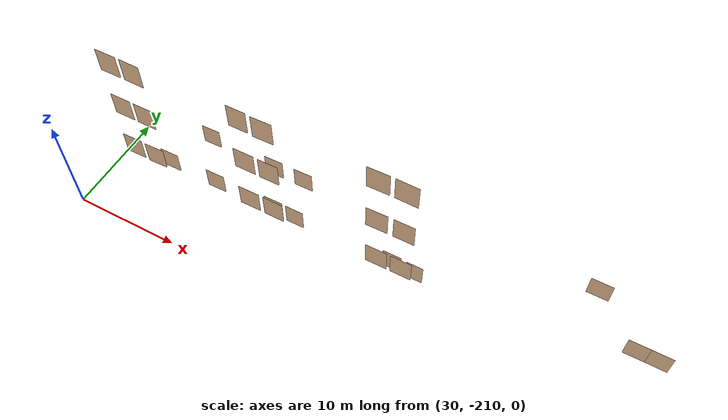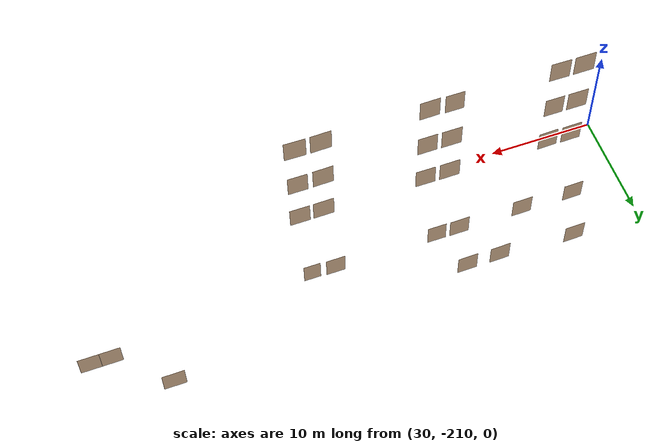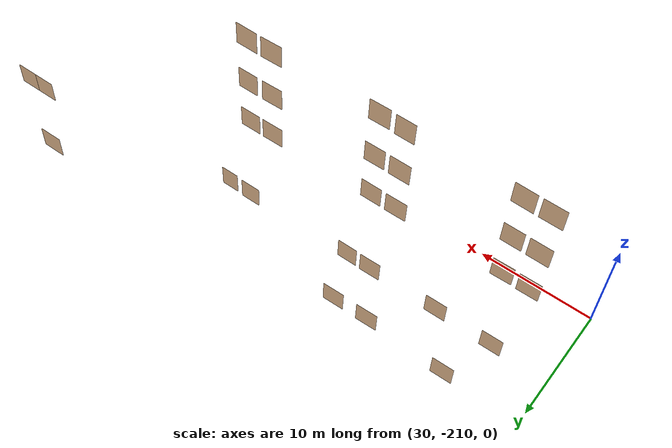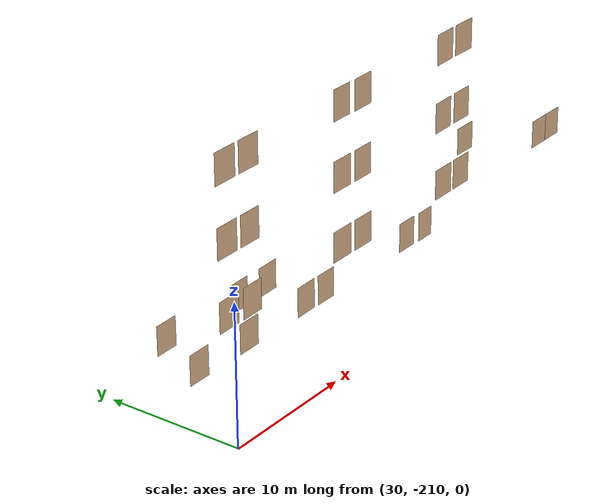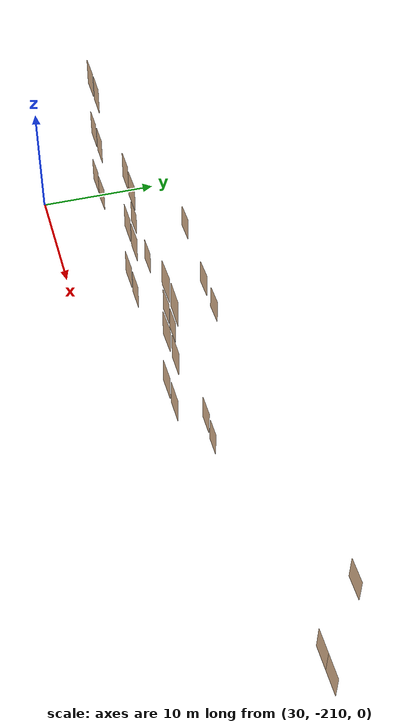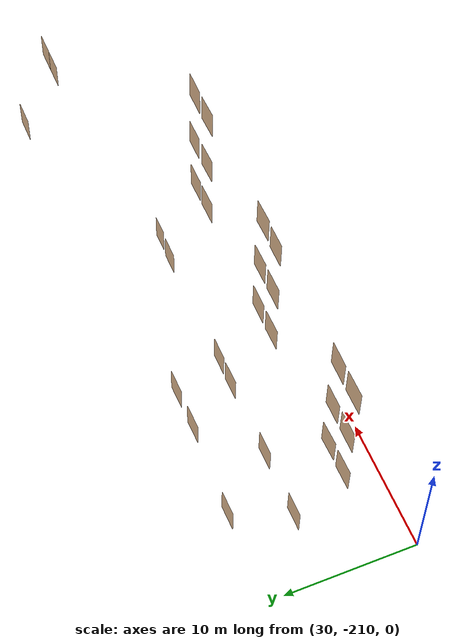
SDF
<sdf version="1.7">
 <world name="sim_world">
  <model name="puerta42">
   <pose>80.53459817433327 -200.9328262036871 0.0 0 0 0.0011002854422385291</pose>
   <link name="right">
    <pose>0.9516383064856365 0 1.11 0 0 0</pose>
    <visual name="right_visual">
     <geometry><box><size>1.893276612971273 0.03 2.2</size></box></geometry>
     <material>
      <ambient>0.5 0.25 0 0.6</ambient>
      <diffuse>0.5 0.25 0 0.6</diffuse>
      <pbr><metal><metalness>0.0</metalness></metal></pbr>
     </material>
    </visual>
    <collision name="right_collision">
     <geometry><box><size>1.893276612971273 0.03 2.2</size></box></geometry>
     <surface><contact><collide_bitmask>0x02</collide_bitmask></contact></surface>
    </collision>
    <inertial>
     <mass>50.0</mass>
     <inertia><ixx>20.17041666666667</ixx><iyy>35.1020680550999</iyy><izz>14.939151388433233</izz></inertia>
    </inertial>
   </link>
   <joint name="right_joint" type="revolute">
    <parent>world</parent>
    <child>right</child>
    <axis><xyz>0 0 -1</xyz><limit><lower>0</lower><upper>1.57</upper></limit></axis>
    <pose>0.9516383064856365 0 0 0 0 0</pose>
   </joint>
   <link name="left">
    <pose>-0.9516383064856365 0 1.11 0 0 0</pose>
    <visual name="left_visual">
     <geometry><box><size>1.893276612971273 0.03 2.2</size></box></geometry>
     <material>
      <ambient>0.5 0.25 0 0.6</ambient>
      <diffuse>0.5 0.25 0 0.6</diffuse>
      <pbr><metal><metalness>0.0</metalness></metal></pbr>
     </material>
    </visual>
    <collision name="left_collision">
     <geometry><box><size>1.893276612971273 0.03 2.2</size></box></geometry>
     <surface><contact><collide_bitmask>0x02</collide_bitmask></contact></surface>
    </collision>
    <inertial>
     <mass>50.0</mass>
     <inertia><ixx>20.17041666666667</ixx><iyy>35.1020680550999</iyy><izz>14.939151388433233</izz></inertia>
    </inertial>
   </link>
   <joint name="left_joint" type="revolute">
    <parent>world</parent>
    <child>left</child>
    <axis><xyz>0 0 -1</xyz><limit><lower>-1.57</lower><upper>0</upper></limit></axis>
    <pose>-0.9516383064856365 0 0 0 0 0</pose>
   </joint>
   <plugin name="register_component" filename="libregister_component.so">
    <component name="Door">
     <v_max_door>0.5</v_max_door>
     <a_max_door>0.3</a_max_door>
     <a_nom_door>0.15</a_nom_door>
     <dx_min_door>0.01</dx_min_door>
     <f_max_door>500.0</f_max_door>
     <ros_interface>true</ros_interface>
     <door name="puerta42" type="DoubleSwingDoor" left_joint_name="left_joint" right_joint_name="right_joint"/>
    </component>
   </plugin>
  </model>
  <model name="puerta80">
   <pose>43.98380168247718 -199.02396635045642 0.0 0 0 0.021663999724929484</pose>
   <link name="right">
    <pose>0 0 1.11 0 0 0</pose>
    <visual name="right_visual">
     <geometry><box><size>1.888745174678212 0.03 2.2</size></box></geometry>
     <material>
      <ambient>0.5 0.25 0 0.6</ambient>
      <diffuse>0.5 0.25 0 0.6</diffuse>
      <pbr><metal><metalness>0.0</metalness></metal></pbr>
     </material>
    </visual>
    <collision name="right_collision">
     <geometry><box><size>1.888745174678212 0.03 2.2</size></box></geometry>
     <surface><contact><collide_bitmask>0x02</collide_bitmask></contact></surface>
    </collision>
    <inertial>
     <mass>50.0</mass>
     <inertia><ixx>20.17041666666667</ixx><iyy>35.03065972862597</iyy><izz>14.867743061959292</izz></inertia>
    </inertial>
   </link>
   <joint name="right_joint" type="revolute">
    <parent>world</parent>
    <child>right</child>
    <axis><xyz>0 0 -1</xyz><limit><lower>0</lower><upper>1.57</upper></limit></axis>
    <pose>0.949372587339106 0 0 0 0 0</pose>
   </joint>
   <plugin name="register_component" filename="libregister_component.so">
    <component name="Door">
     <v_max_door>0.5</v_max_door>
     <a_max_door>0.3</a_max_door>
     <a_nom_door>0.15</a_nom_door>
     <dx_min_door>0.01</dx_min_door>
     <f_max_door>500.0</f_max_door>
     <ros_interface>true</ros_interface>
     <door name="puerta80" type="SwingDoor" left_joint_name="empty_joint" right_joint_name="right_joint"/>
    </component>
   </plugin>
  </model>
  <model name="puerta81">
   <pose>47.12745659566852 -199.02063719348487 0.0 0 0 -3.1238058205441708</pose>
   <link name="right">
    <pose>0 0 1.11 0 0 0</pose>
    <visual name="right_visual">
     <geometry><box><size>1.8678341784994377 0.03 2.2</size></box></geometry>
     <material>
      <ambient>0.5 0.25 0 0.6</ambient>
      <diffuse>0.5 0.25 0 0.6</diffuse>
      <pbr><metal><metalness>0.0</metalness></metal></pbr>
     </material>
    </visual>
    <collision name="right_collision">
     <geometry><box><size>1.8678341784994377 0.03 2.2</size></box></geometry>
     <surface><contact><collide_bitmask>0x02</collide_bitmask></contact></surface>
    </collision>
    <inertial>
     <mass>50.0</mass>
     <inertia><ixx>20.17041666666667</ixx><iyy>34.703352159877795</iyy><izz>14.540435493211122</izz></inertia>
    </inertial>
   </link>
   <joint name="right_joint" type="revolute">
    <parent>world</parent>
    <child>right</child>
    <axis><xyz>0 0 1</xyz><limit><lower>0</lower><upper>1.57</upper></limit></axis>
    <pose>0.9389170892497188 0 0 0 0 0</pose>
   </joint>
   <plugin name="register_component" filename="libregister_component.so">
    <component name="Door">
     <v_max_door>0.5</v_max_door>
     <a_max_door>0.3</a_max_door>
     <a_nom_door>0.15</a_nom_door>
     <dx_min_door>0.01</dx_min_door>
     <f_max_door>500.0</f_max_door>
     <ros_interface>true</ros_interface>
     <door name="puerta81" type="SwingDoor" left_joint_name="empty_joint" right_joint_name="right_joint"/>
    </component>
   </plugin>
  </model>
  <model name="puerta82">
   <pose>36.79221406837301 -198.7019509575801 0.0 0 0 0.014556494738415597</pose>
   <link name="right">
    <pose>0 0 1.11 0 0 0</pose>
    <visual name="right_visual">
     <geometry><box><size>1.888572361059105 0.03 2.2</size></box></geometry>
     <material>
      <ambient>0.5 0.25 0 0.6</ambient>
      <diffuse>0.5 0.25 0 0.6</diffuse>
      <pbr><metal><metalness>0.0</metalness></metal></pbr>
     </material>
    </visual>
    <collision name="right_collision">
     <geometry><box><size>1.888572361059105 0.03 2.2</size></box></geometry>
     <surface><contact><collide_bitmask>0x02</collide_bitmask></contact></surface>
    </collision>
    <inertial>
     <mass>50.0</mass>
     <inertia><ixx>20.17041666666667</ixx><iyy>35.02793984565152</iyy><izz>14.865023178984844</izz></inertia>
    </inertial>
   </link>
   <joint name="right_joint" type="revolute">
    <parent>world</parent>
    <child>right</child>
    <axis><xyz>0 0 -1</xyz><limit><lower>0</lower><upper>1.57</upper></limit></axis>
    <pose>0.9492861805295525 0 0 0 0 0</pose>
   </joint>
   <plugin name="register_component" filename="libregister_component.so">
    <component name="Door">
     <v_max_door>0.5</v_max_door>
     <a_max_door>0.3</a_max_door>
     <a_nom_door>0.15</a_nom_door>
     <dx_min_door>0.01</dx_min_door>
     <f_max_door>500.0</f_max_door>
     <ros_interface>true</ros_interface>
     <door name="puerta82" type="SwingDoor" left_joint_name="empty_joint" right_joint_name="right_joint"/>
    </component>
   </plugin>
  </model>
  <model name="puerta83">
   <pose>35.02457490603186 -202.90318596742438 0.0 0 0 0.011090436954937903</pose>
   <link name="right">
    <pose>0 0 1.11 0 0 0</pose>
    <visual name="right_visual">
     <geometry><box><size>1.858917512597385 0.03 2.2</size></box></geometry>
     <material>
      <ambient>0.5 0.25 0 0.6</ambient>
      <diffuse>0.5 0.25 0 0.6</diffuse>
      <pbr><metal><metalness>0.0</metalness></metal></pbr>
     </material>
    </visual>
    <collision name="right_collision">
     <geometry><box><size>1.858917512597385 0.03 2.2</size></box></geometry>
     <surface><contact><collide_bitmask>0x02</collide_bitmask></contact></surface>
    </collision>
    <inertial>
     <mass>50.0</mass>
     <inertia><ixx>20.17041666666667</ixx><iyy>34.56489299433855</iyy><izz>14.401976327671871</izz></inertia>
    </inertial>
   </link>
   <joint name="right_joint" type="revolute">
    <parent>world</parent>
    <child>right</child>
    <axis><xyz>0 0 1</xyz><limit><lower>0</lower><upper>1.57</upper></limit></axis>
    <pose>0.9344587562986925 0 0 0 0 0</pose>
   </joint>
   <plugin name="register_component" filename="libregister_component.so">
    <component name="Door">
     <v_max_door>0.5</v_max_door>
     <a_max_door>0.3</a_max_door>
     <a_nom_door>0.15</a_nom_door>
     <dx_min_door>0.01</dx_min_door>
     <f_max_door>500.0</f_max_door>
     <ros_interface>true</ros_interface>
     <door name="puerta83" type="SwingDoor" left_joint_name="empty_joint" right_joint_name="right_joint"/>
    </component>
   </plugin>
  </model>
  <model name="puerta84">
   <pose>40.11958117057455 -202.92670485054592 0.0 0 0 0.009211381170695422</pose>
   <link name="right">
    <pose>0 0 1.11 0 0 0</pose>
    <visual name="right_visual">
     <geometry><box><size>1.8903849006128801 0.03 2.2</size></box></geometry>
     <material>
      <ambient>0.5 0.25 0 0.6</ambient>
      <diffuse>0.5 0.25 0 0.6</diffuse>
      <pbr><metal><metalness>0.0</metalness></metal></pbr>
     </material>
    </visual>
    <collision name="right_collision">
     <geometry><box><size>1.8903849006128801 0.03 2.2</size></box></geometry>
     <surface><contact><collide_bitmask>0x02</collide_bitmask></contact></surface>
    </collision>
    <inertial>
     <mass>50.0</mass>
     <inertia><ixx>20.17041666666667</ixx><iyy>35.05647946860487</iyy><izz>14.893562801938204</izz></inertia>
    </inertial>
   </link>
   <joint name="right_joint" type="revolute">
    <parent>world</parent>
    <child>right</child>
    <axis><xyz>0 0 1</xyz><limit><lower>0</lower><upper>1.57</upper></limit></axis>
    <pose>0.9501924503064401 0 0 0 0 0</pose>
   </joint>
   <plugin name="register_component" filename="libregister_component.so">
    <component name="Door">
     <v_max_door>0.5</v_max_door>
     <a_max_door>0.3</a_max_door>
     <a_nom_door>0.15</a_nom_door>
     <dx_min_door>0.01</dx_min_door>
     <f_max_door>500.0</f_max_door>
     <ros_interface>true</ros_interface>
     <door name="puerta84" type="SwingDoor" left_joint_name="empty_joint" right_joint_name="right_joint"/>
    </component>
   </plugin>
  </model>
  <model name="puerta85">
   <pose>46.34669769106855 -202.90780383032038 0.0 0 0 0.012888549709268199</pose>
   <link name="right">
    <pose>0 0 1.11 0 0 0</pose>
    <visual name="right_visual">
     <geometry><box><size>1.8592800092004522 0.03 2.2</size></box></geometry>
     <material>
      <ambient>0.5 0.25 0 0.6</ambient>
      <diffuse>0.5 0.25 0 0.6</diffuse>
      <pbr><metal><metalness>0.0</metalness></metal></pbr>
     </material>
    </visual>
    <collision name="right_collision">
     <geometry><box><size>1.8592800092004522 0.03 2.2</size></box></geometry>
     <surface><contact><collide_bitmask>0x02</collide_bitmask></contact></surface>
    </collision>
    <inertial>
     <mass>50.0</mass>
     <inertia><ixx>20.17041666666667</ixx><iyy>34.57050896921848</iyy><izz>14.407592302551809</izz></inertia>
    </inertial>
   </link>
   <joint name="right_joint" type="revolute">
    <parent>world</parent>
    <child>right</child>
    <axis><xyz>0 0 1</xyz><limit><lower>0</lower><upper>1.57</upper></limit></axis>
    <pose>0.9346400046002261 0 0 0 0 0</pose>
   </joint>
   <plugin name="register_component" filename="libregister_component.so">
    <component name="Door">
     <v_max_door>0.5</v_max_door>
     <a_max_door>0.3</a_max_door>
     <a_nom_door>0.15</a_nom_door>
     <dx_min_door>0.01</dx_min_door>
     <f_max_door>500.0</f_max_door>
     <ros_interface>true</ros_interface>
     <door name="puerta85" type="SwingDoor" left_joint_name="empty_joint" right_joint_name="right_joint"/>
    </component>
   </plugin>
  </model>
  <model name="puerta86">
   <pose>48.55215679255414 -202.93202076248434 0.0 0 0 3.141592653589793</pose>
   <link name="right">
    <pose>0 0 1.11 0 0 0</pose>
    <visual name="right_visual">
     <geometry><box><size>1.7645838553785518 0.03 2.2</size></box></geometry>
     <material>
      <ambient>0.5 0.25 0 0.6</ambient>
      <diffuse>0.5 0.25 0 0.6</diffuse>
      <pbr><metal><metalness>0.0</metalness></metal></pbr>
     </material>
    </visual>
    <collision name="right_collision">
     <geometry><box><size>1.7645838553785518 0.03 2.2</size></box></geometry>
     <surface><contact><collide_bitmask>0x02</collide_bitmask></contact></surface>
    </collision>
    <inertial>
     <mass>50.0</mass>
     <inertia><ixx>20.17041666666667</ixx><iyy>33.140650761094314</iyy><izz>12.977734094427642</izz></inertia>
    </inertial>
   </link>
   <joint name="right_joint" type="revolute">
    <parent>world</parent>
    <child>right</child>
    <axis><xyz>0 0 -1</xyz><limit><lower>0</lower><upper>1.57</upper></limit></axis>
    <pose>0.8872919276892759 0 0 0 0 0</pose>
   </joint>
   <plugin name="register_component" filename="libregister_component.so">
    <component name="Door">
     <v_max_door>0.5</v_max_door>
     <a_max_door>0.3</a_max_door>
     <a_nom_door>0.15</a_nom_door>
     <dx_min_door>0.01</dx_min_door>
     <f_max_door>500.0</f_max_door>
     <ros_interface>true</ros_interface>
     <door name="puerta86" type="SwingDoor" left_joint_name="empty_joint" right_joint_name="right_joint"/>
    </component>
   </plugin>
  </model>
  <model name="puerta87">
   <pose>58.32554143547521 -202.8938249507786 0.0 0 0 0.0</pose>
   <link name="right">
    <pose>0 0 1.11 0 0 0</pose>
    <visual name="right_visual">
     <geometry><box><size>1.7652640057275784 0.03 2.2</size></box></geometry>
     <material>
      <ambient>0.5 0.25 0 0.6</ambient>
      <diffuse>0.5 0.25 0 0.6</diffuse>
      <pbr><metal><metalness>0.0</metalness></metal></pbr>
     </material>
    </visual>
    <collision name="right_collision">
     <geometry><box><size>1.7652640057275784 0.03 2.2</size></box></geometry>
     <surface><contact><collide_bitmask>0x02</collide_bitmask></contact></surface>
    </collision>
    <inertial>
     <mass>50.0</mass>
     <inertia><ixx>20.17041666666667</ixx><iyy>33.15065420798907</iyy><izz>12.9877375413224</izz></inertia>
    </inertial>
   </link>
   <joint name="right_joint" type="revolute">
    <parent>world</parent>
    <child>right</child>
    <axis><xyz>0 0 1</xyz><limit><lower>0</lower><upper>1.57</upper></limit></axis>
    <pose>0.8876320028637892 0 0 0 0 0</pose>
   </joint>
   <plugin name="register_component" filename="libregister_component.so">
    <component name="Door">
     <v_max_door>0.5</v_max_door>
     <a_max_door>0.3</a_max_door>
     <a_nom_door>0.15</a_nom_door>
     <dx_min_door>0.01</dx_min_door>
     <f_max_door>500.0</f_max_door>
     <ros_interface>true</ros_interface>
     <door name="puerta87" type="SwingDoor" left_joint_name="empty_joint" right_joint_name="right_joint"/>
    </component>
   </plugin>
  </model>
  <model name="puerta88">
   <pose>60.523089314480046 -202.96921424735993 0.0 0 0 3.141592653589793</pose>
   <link name="right">
    <pose>0 0 1.11 0 0 0</pose>
    <visual name="right_visual">
     <geometry><box><size>1.5534508680866261 0.03 2.2</size></box></geometry>
     <material>
      <ambient>0.5 0.25 0 0.6</ambient>
      <diffuse>0.5 0.25 0 0.6</diffuse>
      <pbr><metal><metalness>0.0</metalness></metal></pbr>
     </material>
    </visual>
    <collision name="right_collision">
     <geometry><box><size>1.5534508680866261 0.03 2.2</size></box></geometry>
     <surface><contact><collide_bitmask>0x02</collide_bitmask></contact></surface>
    </collision>
    <inertial>
     <mass>50.0</mass>
     <inertia><ixx>20.17041666666667</ixx><iyy>30.221706664829558</iyy><izz>10.058789998162887</izz></inertia>
    </inertial>
   </link>
   <joint name="right_joint" type="revolute">
    <parent>world</parent>
    <child>right</child>
    <axis><xyz>0 0 -1</xyz><limit><lower>0</lower><upper>1.57</upper></limit></axis>
    <pose>0.7817254340433131 0 0 0 0 0</pose>
   </joint>
   <plugin name="register_component" filename="libregister_component.so">
    <component name="Door">
     <v_max_door>0.5</v_max_door>
     <a_max_door>0.3</a_max_door>
     <a_nom_door>0.15</a_nom_door>
     <dx_min_door>0.01</dx_min_door>
     <f_max_door>500.0</f_max_door>
     <ros_interface>true</ros_interface>
     <door name="puerta88" type="SwingDoor" left_joint_name="empty_joint" right_joint_name="right_joint"/>
    </component>
   </plugin>
  </model>
  <model name="puerta90">
   <pose>75.06856989439771 -196.93950241632362 0.0 0 0 0.0</pose>
   <link name="right">
    <pose>0 0 1.11 0 0 0</pose>
    <visual name="right_visual">
     <geometry><box><size>2.026763916234122 0.03 2.2</size></box></geometry>
     <material>
      <ambient>0.5 0.25 0 0.6</ambient>
      <diffuse>0.5 0.25 0 0.6</diffuse>
      <pbr><metal><metalness>0.0</metalness></metal></pbr>
     </material>
    </visual>
    <collision name="right_collision">
     <geometry><box><size>2.026763916234122 0.03 2.2</size></box></geometry>
     <surface><contact><collide_bitmask>0x02</collide_bitmask></contact></surface>
    </collision>
    <inertial>
     <mass>50.0</mass>
     <inertia><ixx>20.17041666666667</ixx><iyy>37.28238321728615</iyy><izz>17.11946655061948</izz></inertia>
    </inertial>
   </link>
   <joint name="right_joint" type="revolute">
    <parent>world</parent>
    <child>right</child>
    <axis><xyz>0 0 1</xyz><limit><lower>0</lower><upper>1.57</upper></limit></axis>
    <pose>1.018381958117061 0 0 0 0 0</pose>
   </joint>
   <plugin name="register_component" filename="libregister_component.so">
    <component name="Door">
     <v_max_door>0.5</v_max_door>
     <a_max_door>0.3</a_max_door>
     <a_nom_door>0.15</a_nom_door>
     <dx_min_door>0.01</dx_min_door>
     <f_max_door>500.0</f_max_door>
     <ros_interface>true</ros_interface>
     <door name="puerta90" type="SwingDoor" left_joint_name="empty_joint" right_joint_name="right_joint"/>
    </component>
   </plugin>
  </model>
  <model name="puerta3180">
   <pose>34.423930660864514 -205.95124335249324 5.0 0 0 0.013082774168524991</pose>
   <link name="right">
    <pose>0 0 1.11 0 0 0</pose>
    <visual name="right_visual">
     <geometry><box><size>1.8933687840439233 0.03 2.2</size></box></geometry>
     <material>
      <ambient>0.5 0.25 0 0.6</ambient>
      <diffuse>0.5 0.25 0 0.6</diffuse>
      <pbr><metal><metalness>0.0</metalness></metal></pbr>
     </material>
    </visual>
    <collision name="right_collision">
     <geometry><box><size>1.8933687840439233 0.03 2.2</size></box></geometry>
     <surface><contact><collide_bitmask>0x02</collide_bitmask></contact></surface>
    </collision>
    <inertial>
     <mass>50.0</mass>
     <inertia><ixx>20.17041666666667</ixx><iyy>35.10352230163319</iyy><izz>14.94060563496652</izz></inertia>
    </inertial>
   </link>
   <joint name="right_joint" type="revolute">
    <parent>world</parent>
    <child>right</child>
    <axis><xyz>0 0 1</xyz><limit><lower>0</lower><upper>1.57</upper></limit></axis>
    <pose>0.9516843920219616 0 0 0 0 0</pose>
   </joint>
   <plugin name="register_component" filename="libregister_component.so">
    <component name="Door">
     <v_max_door>0.5</v_max_door>
     <a_max_door>0.3</a_max_door>
     <a_nom_door>0.15</a_nom_door>
     <dx_min_door>0.01</dx_min_door>
     <f_max_door>500.0</f_max_door>
     <ros_interface>true</ros_interface>
     <door name="puerta3180" type="SwingDoor" left_joint_name="empty_joint" right_joint_name="right_joint"/>
    </component>
   </plugin>
  </model>
  <model name="puerta3181">
   <pose>36.72579506338661 -205.96396133138595 5.0 0 0 -3.114577540775267</pose>
   <link name="right">
    <pose>0 0 1.11 0 0 0</pose>
    <visual name="right_visual">
     <geometry><box><size>1.8554040324153194 0.03 2.2</size></box></geometry>
     <material>
      <ambient>0.5 0.25 0 0.6</ambient>
      <diffuse>0.5 0.25 0 0.6</diffuse>
      <pbr><metal><metalness>0.0</metalness></metal></pbr>
     </material>
    </visual>
    <collision name="right_collision">
     <geometry><box><size>1.8554040324153194 0.03 2.2</size></box></geometry>
     <surface><contact><collide_bitmask>0x02</collide_bitmask></contact></surface>
    </collision>
    <inertial>
     <mass>50.0</mass>
     <inertia><ixx>20.17041666666667</ixx><iyy>34.51051718126262</iyy><izz>14.34760051459595</izz></inertia>
    </inertial>
   </link>
   <joint name="right_joint" type="revolute">
    <parent>world</parent>
    <child>right</child>
    <axis><xyz>0 0 -1</xyz><limit><lower>0</lower><upper>1.57</upper></limit></axis>
    <pose>0.9327020162076597 0 0 0 0 0</pose>
   </joint>
   <plugin name="register_component" filename="libregister_component.so">
    <component name="Door">
     <v_max_door>0.5</v_max_door>
     <a_max_door>0.3</a_max_door>
     <a_nom_door>0.15</a_nom_door>
     <dx_min_door>0.01</dx_min_door>
     <f_max_door>500.0</f_max_door>
     <ros_interface>true</ros_interface>
     <door name="puerta3181" type="SwingDoor" left_joint_name="empty_joint" right_joint_name="right_joint"/>
    </component>
   </plugin>
  </model>
  <model name="puerta3182">
   <pose>46.328419544000596 -205.92934453609578 5.0 0 0 0.009621908782481814</pose>
   <link name="right">
    <pose>0 0 1.11 0 0 0</pose>
    <visual name="right_visual">
     <geometry><box><size>1.930632519178174 0.03 2.2</size></box></geometry>
     <material>
      <ambient>0.5 0.25 0 0.6</ambient>
      <diffuse>0.5 0.25 0 0.6</diffuse>
      <pbr><metal><metalness>0.0</metalness></metal></pbr>
     </material>
    </visual>
    <collision name="right_collision">
     <geometry><box><size>1.930632519178174 0.03 2.2</size></box></geometry>
     <surface><contact><collide_bitmask>0x02</collide_bitmask></contact></surface>
    </collision>
    <inertial>
     <mass>50.0</mass>
     <inertia><ixx>20.17041666666667</ixx><iyy>35.69725801711776</iyy><izz>15.534341350451093</izz></inertia>
    </inertial>
   </link>
   <joint name="right_joint" type="revolute">
    <parent>world</parent>
    <child>right</child>
    <axis><xyz>0 0 1</xyz><limit><lower>0</lower><upper>1.57</upper></limit></axis>
    <pose>0.970316259589087 0 0 0 0 0</pose>
   </joint>
   <plugin name="register_component" filename="libregister_component.so">
    <component name="Door">
     <v_max_door>0.5</v_max_door>
     <a_max_door>0.3</a_max_door>
     <a_nom_door>0.15</a_nom_door>
     <dx_min_door>0.01</dx_min_door>
     <f_max_door>500.0</f_max_door>
     <ros_interface>true</ros_interface>
     <door name="puerta3182" type="SwingDoor" left_joint_name="empty_joint" right_joint_name="right_joint"/>
    </component>
   </plugin>
  </model>
  <model name="puerta3183">
   <pose>48.6497577467695 -205.94190120738483 5.0 0 0 3.1384356169542413</pose>
   <link name="right">
    <pose>0 0 1.11 0 0 0</pose>
    <visual name="right_visual">
     <geometry><box><size>1.8655799745927737 0.03 2.2</size></box></geometry>
     <material>
      <ambient>0.5 0.25 0 0.6</ambient>
      <diffuse>0.5 0.25 0 0.6</diffuse>
      <pbr><metal><metalness>0.0</metalness></metal></pbr>
     </material>
    </visual>
    <collision name="right_collision">
     <geometry><box><size>1.8655799745927737 0.03 2.2</size></box></geometry>
     <surface><contact><collide_bitmask>0x02</collide_bitmask></contact></surface>
    </collision>
    <inertial>
     <mass>50.0</mass>
     <inertia><ixx>20.17041666666667</ixx><iyy>34.668286006673235</iyy><izz>14.50536934000656</izz></inertia>
    </inertial>
   </link>
   <joint name="right_joint" type="revolute">
    <parent>world</parent>
    <child>right</child>
    <axis><xyz>0 0 -1</xyz><limit><lower>0</lower><upper>1.57</upper></limit></axis>
    <pose>0.9377899872963869 0 0 0 0 0</pose>
   </joint>
   <plugin name="register_component" filename="libregister_component.so">
    <component name="Door">
     <v_max_door>0.5</v_max_door>
     <a_max_door>0.3</a_max_door>
     <a_nom_door>0.15</a_nom_door>
     <dx_min_door>0.01</dx_min_door>
     <f_max_door>500.0</f_max_door>
     <ros_interface>true</ros_interface>
     <door name="puerta3183" type="SwingDoor" left_joint_name="empty_joint" right_joint_name="right_joint"/>
    </component>
   </plugin>
  </model>
  <model name="puerta3184">
   <pose>58.27020966451763 -205.93543889035692 5.0 0 0 0.009683820514455642</pose>
   <link name="right">
    <pose>0 0 1.11 0 0 0</pose>
    <visual name="right_visual">
     <geometry><box><size>1.9182113882328165 0.03 2.2</size></box></geometry>
     <material>
      <ambient>0.5 0.25 0 0.6</ambient>
      <diffuse>0.5 0.25 0 0.6</diffuse>
      <pbr><metal><metalness>0.0</metalness></metal></pbr>
     </material>
    </visual>
    <collision name="right_collision">
     <geometry><box><size>1.9182113882328165 0.03 2.2</size></box></geometry>
     <surface><contact><collide_bitmask>0x02</collide_bitmask></contact></surface>
    </collision>
    <inertial>
     <mass>50.0</mass>
     <inertia><ixx>20.17041666666667</ixx><iyy>35.49806220810862</iyy><izz>15.335145541441955</izz></inertia>
    </inertial>
   </link>
   <joint name="right_joint" type="revolute">
    <parent>world</parent>
    <child>right</child>
    <axis><xyz>0 0 1</xyz><limit><lower>0</lower><upper>1.57</upper></limit></axis>
    <pose>0.9641056941164082 0 0 0 0 0</pose>
   </joint>
   <plugin name="register_component" filename="libregister_component.so">
    <component name="Door">
     <v_max_door>0.5</v_max_door>
     <a_max_door>0.3</a_max_door>
     <a_nom_door>0.15</a_nom_door>
     <dx_min_door>0.01</dx_min_door>
     <f_max_door>500.0</f_max_door>
     <ros_interface>true</ros_interface>
     <door name="puerta3184" type="SwingDoor" left_joint_name="empty_joint" right_joint_name="right_joint"/>
    </component>
   </plugin>
  </model>
  <model name="puerta3185">
   <pose>60.473630885456814 -205.92608886141994 5.0 0 0 -3.141581399112606</pose>
   <link name="right">
    <pose>0 0 1.11 0 0 0</pose>
    <visual name="right_visual">
     <geometry><box><size>1.8592344158445573 0.03 2.2</size></box></geometry>
     <material>
      <ambient>0.5 0.25 0 0.6</ambient>
      <diffuse>0.5 0.25 0 0.6</diffuse>
      <pbr><metal><metalness>0.0</metalness></metal></pbr>
     </material>
    </visual>
    <collision name="right_collision">
     <geometry><box><size>1.8592344158445573 0.03 2.2</size></box></geometry>
     <surface><contact><collide_bitmask>0x02</collide_bitmask></contact></surface>
    </collision>
    <inertial>
     <mass>50.0</mass>
     <inertia><ixx>20.17041666666667</ixx><iyy>34.56980255442023</iyy><izz>14.406885887753552</izz></inertia>
    </inertial>
   </link>
   <joint name="right_joint" type="revolute">
    <parent>world</parent>
    <child>right</child>
    <axis><xyz>0 0 -1</xyz><limit><lower>0</lower><upper>1.57</upper></limit></axis>
    <pose>0.9346172079222786 0 0 0 0 0</pose>
   </joint>
   <plugin name="register_component" filename="libregister_component.so">
    <component name="Door">
     <v_max_door>0.5</v_max_door>
     <a_max_door>0.3</a_max_door>
     <a_nom_door>0.15</a_nom_door>
     <dx_min_door>0.01</dx_min_door>
     <f_max_door>500.0</f_max_door>
     <ros_interface>true</ros_interface>
     <door name="puerta3185" type="SwingDoor" left_joint_name="empty_joint" right_joint_name="right_joint"/>
    </component>
   </plugin>
  </model>
  <model name="puerta5277">
   <pose>34.4742529522736 -205.89180450050497 10.0 0 0 -4.690877074789777e-06</pose>
   <link name="right">
    <pose>0 0 1.11 0 0 0</pose>
    <visual name="right_visual">
     <geometry><box><size>1.8894983421599174 0.03 2.2</size></box></geometry>
     <material>
      <ambient>0.5 0.25 0 0.6</ambient>
      <diffuse>0.5 0.25 0 0.6</diffuse>
      <pbr><metal><metalness>0.0</metalness></metal></pbr>
     </material>
    </visual>
    <collision name="right_collision">
     <geometry><box><size>1.8894983421599174 0.03 2.2</size></box></geometry>
     <surface><contact><collide_bitmask>0x02</collide_bitmask></contact></surface>
    </collision>
    <inertial>
     <mass>50.0</mass>
     <inertia><ixx>20.17041666666667</ixx><iyy>35.04251660427116</iyy><izz>14.879599937604487</izz></inertia>
    </inertial>
   </link>
   <joint name="right_joint" type="revolute">
    <parent>world</parent>
    <child>right</child>
    <axis><xyz>0 0 1</xyz><limit><lower>0</lower><upper>1.57</upper></limit></axis>
    <pose>0.9497491710799587 0 0 0 0 0</pose>
   </joint>
   <plugin name="register_component" filename="libregister_component.so">
    <component name="Door">
     <v_max_door>0.5</v_max_door>
     <a_max_door>0.3</a_max_door>
     <a_nom_door>0.15</a_nom_door>
     <dx_min_door>0.01</dx_min_door>
     <f_max_door>500.0</f_max_door>
     <ros_interface>true</ros_interface>
     <door name="puerta5277" type="SwingDoor" left_joint_name="empty_joint" right_joint_name="right_joint"/>
    </component>
   </plugin>
  </model>
  <model name="puerta5278">
   <pose>36.69654287320595 -205.90068941331117 10.0 0 0 3.1415879627127237</pose>
   <link name="right">
    <pose>0 0 1.11 0 0 0</pose>
    <visual name="right_visual">
     <geometry><box><size>1.7811079183175174 0.03 2.2</size></box></geometry>
     <material>
      <ambient>0.5 0.25 0 0.6</ambient>
      <diffuse>0.5 0.25 0 0.6</diffuse>
      <pbr><metal><metalness>0.0</metalness></metal></pbr>
     </material>
    </visual>
    <collision name="right_collision">
     <geometry><box><size>1.7811079183175174 0.03 2.2</size></box></geometry>
     <surface><contact><collide_bitmask>0x02</collide_bitmask></contact></surface>
    </collision>
    <inertial>
     <mass>50.0</mass>
     <inertia><ixx>20.17041666666667</ixx><iyy>33.38477256955567</iyy><izz>13.221855902889002</izz></inertia>
    </inertial>
   </link>
   <joint name="right_joint" type="revolute">
    <parent>world</parent>
    <child>right</child>
    <axis><xyz>0 0 -1</xyz><limit><lower>0</lower><upper>1.57</upper></limit></axis>
    <pose>0.8955539591587587 0 0 0 0 0</pose>
   </joint>
   <plugin name="register_component" filename="libregister_component.so">
    <component name="Door">
     <v_max_door>0.5</v_max_door>
     <a_max_door>0.3</a_max_door>
     <a_nom_door>0.15</a_nom_door>
     <dx_min_door>0.01</dx_min_door>
     <f_max_door>500.0</f_max_door>
     <ros_interface>true</ros_interface>
     <door name="puerta5278" type="SwingDoor" left_joint_name="empty_joint" right_joint_name="right_joint"/>
    </component>
   </plugin>
  </model>
  <model name="puerta5279">
   <pose>46.39006062150315 -205.891860396094 10.0 0 0 -4.69087706240128e-06</pose>
   <link name="right">
    <pose>0 0 1.11 0 0 0</pose>
    <visual name="right_visual">
     <geometry><box><size>1.8700675068524137 0.03 2.2</size></box></geometry>
     <material>
      <ambient>0.5 0.25 0 0.6</ambient>
      <diffuse>0.5 0.25 0 0.6</diffuse>
      <pbr><metal><metalness>0.0</metalness></metal></pbr>
     </material>
    </visual>
    <collision name="right_collision">
     <geometry><box><size>1.8700675068524137 0.03 2.2</size></box></geometry>
     <surface><contact><collide_bitmask>0x02</collide_bitmask></contact></surface>
    </collision>
    <inertial>
     <mass>50.0</mass>
     <inertia><ixx>20.17041666666667</ixx><iyy>34.73813533410502</iyy><izz>14.575218667438346</izz></inertia>
    </inertial>
   </link>
   <joint name="right_joint" type="revolute">
    <parent>world</parent>
    <child>right</child>
    <axis><xyz>0 0 1</xyz><limit><lower>0</lower><upper>1.57</upper></limit></axis>
    <pose>0.9400337534262069 0 0 0 0 0</pose>
   </joint>
   <plugin name="register_component" filename="libregister_component.so">
    <component name="Door">
     <v_max_door>0.5</v_max_door>
     <a_max_door>0.3</a_max_door>
     <a_nom_door>0.15</a_nom_door>
     <dx_min_door>0.01</dx_min_door>
     <f_max_door>500.0</f_max_door>
     <ros_interface>true</ros_interface>
     <door name="puerta5279" type="SwingDoor" left_joint_name="empty_joint" right_joint_name="right_joint"/>
    </component>
   </plugin>
  </model>
  <model name="puerta5280">
   <pose>48.637828886689505 -205.90616673881948 10.0 0 0 -3.1348635056183736</pose>
   <link name="right">
    <pose>0 0 1.11 0 0 0</pose>
    <visual name="right_visual">
     <geometry><box><size>1.8127467165252775 0.03 2.2</size></box></geometry>
     <material>
      <ambient>0.5 0.25 0 0.6</ambient>
      <diffuse>0.5 0.25 0 0.6</diffuse>
      <pbr><metal><metalness>0.0</metalness></metal></pbr>
     </material>
    </visual>
    <collision name="right_collision">
     <geometry><box><size>1.8127467165252775 0.03 2.2</size></box></geometry>
     <surface><contact><collide_bitmask>0x02</collide_bitmask></contact></surface>
    </collision>
    <inertial>
     <mass>50.0</mass>
     <inertia><ixx>20.17041666666667</ixx><iyy>33.85854440947157</iyy><izz>13.695627742804897</izz></inertia>
    </inertial>
   </link>
   <joint name="right_joint" type="revolute">
    <parent>world</parent>
    <child>right</child>
    <axis><xyz>0 0 -1</xyz><limit><lower>0</lower><upper>1.57</upper></limit></axis>
    <pose>0.9113733582626388 0 0 0 0 0</pose>
   </joint>
   <plugin name="register_component" filename="libregister_component.so">
    <component name="Door">
     <v_max_door>0.5</v_max_door>
     <a_max_door>0.3</a_max_door>
     <a_nom_door>0.15</a_nom_door>
     <dx_min_door>0.01</dx_min_door>
     <f_max_door>500.0</f_max_door>
     <ros_interface>true</ros_interface>
     <door name="puerta5280" type="SwingDoor" left_joint_name="empty_joint" right_joint_name="right_joint"/>
    </component>
   </plugin>
  </model>
  <model name="puerta5281">
   <pose>58.20288134124643 -205.87996387673712 10.0 0 0 0.02157082721034537</pose>
   <link name="right">
    <pose>0 0 1.11 0 0 0</pose>
    <visual name="right_visual">
     <geometry><box><size>1.8543627368095448 0.03 2.2</size></box></geometry>
     <material>
      <ambient>0.5 0.25 0 0.6</ambient>
      <diffuse>0.5 0.25 0 0.6</diffuse>
      <pbr><metal><metalness>0.0</metalness></metal></pbr>
     </material>
    </visual>
    <collision name="right_collision">
     <geometry><box><size>1.8543627368095448 0.03 2.2</size></box></geometry>
     <surface><contact><collide_bitmask>0x02</collide_bitmask></contact></surface>
    </collision>
    <inertial>
     <mass>50.0</mass>
     <inertia><ixx>20.17041666666667</ixx><iyy>34.49442149861578</iyy><izz>14.331504831949106</izz></inertia>
    </inertial>
   </link>
   <joint name="right_joint" type="revolute">
    <parent>world</parent>
    <child>right</child>
    <axis><xyz>0 0 1</xyz><limit><lower>0</lower><upper>1.57</upper></limit></axis>
    <pose>0.9321813684047724 0 0 0 0 0</pose>
   </joint>
   <plugin name="register_component" filename="libregister_component.so">
    <component name="Door">
     <v_max_door>0.5</v_max_door>
     <a_max_door>0.3</a_max_door>
     <a_nom_door>0.15</a_nom_door>
     <dx_min_door>0.01</dx_min_door>
     <f_max_door>500.0</f_max_door>
     <ros_interface>true</ros_interface>
     <door name="puerta5281" type="SwingDoor" left_joint_name="empty_joint" right_joint_name="right_joint"/>
    </component>
   </plugin>
  </model>
  <model name="puerta5282">
   <pose>60.49051343859955 -205.85095359957134 10.0 0 0 3.141587962712715</pose>
   <link name="right">
    <pose>0 0 1.11 0 0 0</pose>
    <visual name="right_visual">
     <geometry><box><size>1.7944912192475528 0.03 2.2</size></box></geometry>
     <material>
      <ambient>0.5 0.25 0 0.6</ambient>
      <diffuse>0.5 0.25 0 0.6</diffuse>
      <pbr><metal><metalness>0.0</metalness></metal></pbr>
     </material>
    </visual>
    <collision name="right_collision">
     <geometry><box><size>1.7944912192475528 0.03 2.2</size></box></geometry>
     <surface><contact><collide_bitmask>0x02</collide_bitmask></contact></surface>
    </collision>
    <inertial>
     <mass>50.0</mass>
     <inertia><ixx>20.17041666666667</ixx><iyy>33.584161399819045</iyy><izz>13.421244733152372</izz></inertia>
    </inertial>
   </link>
   <joint name="right_joint" type="revolute">
    <parent>world</parent>
    <child>right</child>
    <axis><xyz>0 0 -1</xyz><limit><lower>0</lower><upper>1.57</upper></limit></axis>
    <pose>0.9022456096237764 0 0 0 0 0</pose>
   </joint>
   <plugin name="register_component" filename="libregister_component.so">
    <component name="Door">
     <v_max_door>0.5</v_max_door>
     <a_max_door>0.3</a_max_door>
     <a_nom_door>0.15</a_nom_door>
     <dx_min_door>0.01</dx_min_door>
     <f_max_door>500.0</f_max_door>
     <ros_interface>true</ros_interface>
     <door name="puerta5282" type="SwingDoor" left_joint_name="empty_joint" right_joint_name="right_joint"/>
    </component>
   </plugin>
  </model>
  <model name="puerta7214">
   <pose>34.42135316476041 -205.90563217126947 15.0 0 0 0.004144475707184687</pose>
   <link name="right">
    <pose>0 0 1.11 0 0 0</pose>
    <visual name="right_visual">
     <geometry><box><size>1.915911616676529 0.03 2.2</size></box></geometry>
     <material>
      <ambient>0.5 0.25 0 0.6</ambient>
      <diffuse>0.5 0.25 0 0.6</diffuse>
      <pbr><metal><metalness>0.0</metalness></metal></pbr>
     </material>
    </visual>
    <collision name="right_collision">
     <geometry><box><size>1.915911616676529 0.03 2.2</size></box></geometry>
     <surface><contact><collide_bitmask>0x02</collide_bitmask></contact></surface>
    </collision>
    <inertial>
     <mass>50.0</mass>
     <inertia><ixx>20.17041666666667</ixx><iyy>35.46132217881697</iyy><izz>15.2984055121503</izz></inertia>
    </inertial>
   </link>
   <joint name="right_joint" type="revolute">
    <parent>world</parent>
    <child>right</child>
    <axis><xyz>0 0 1</xyz><limit><lower>0</lower><upper>1.57</upper></limit></axis>
    <pose>0.9629558083382646 0 0 0 0 0</pose>
   </joint>
   <plugin name="register_component" filename="libregister_component.so">
    <component name="Door">
     <v_max_door>0.5</v_max_door>
     <a_max_door>0.3</a_max_door>
     <a_nom_door>0.15</a_nom_door>
     <dx_min_door>0.01</dx_min_door>
     <f_max_door>500.0</f_max_door>
     <ros_interface>true</ros_interface>
     <door name="puerta7214" type="SwingDoor" left_joint_name="empty_joint" right_joint_name="right_joint"/>
    </component>
   </plugin>
  </model>
  <model name="puerta7215">
   <pose>36.67359679598189 -205.91378108808794 15.0 0 0 3.128508701306267</pose>
   <link name="right">
    <pose>0 0 1.11 0 0 0</pose>
    <visual name="right_visual">
     <geometry><box><size>1.843522606701523 0.03 2.2</size></box></geometry>
     <material>
      <ambient>0.5 0.25 0 0.6</ambient>
      <diffuse>0.5 0.25 0 0.6</diffuse>
      <pbr><metal><metalness>0.0</metalness></metal></pbr>
     </material>
    </visual>
    <collision name="right_collision">
     <geometry><box><size>1.843522606701523 0.03 2.2</size></box></geometry>
     <surface><contact><collide_bitmask>0x02</collide_bitmask></contact></surface>
    </collision>
    <inertial>
     <mass>50.0</mass>
     <inertia><ixx>20.17041666666667</ixx><iyy>34.32739833924825</iyy><izz>14.164481672581577</izz></inertia>
    </inertial>
   </link>
   <joint name="right_joint" type="revolute">
    <parent>world</parent>
    <child>right</child>
    <axis><xyz>0 0 -1</xyz><limit><lower>0</lower><upper>1.57</upper></limit></axis>
    <pose>0.9267613033507615 0 0 0 0 0</pose>
   </joint>
   <plugin name="register_component" filename="libregister_component.so">
    <component name="Door">
     <v_max_door>0.5</v_max_door>
     <a_max_door>0.3</a_max_door>
     <a_nom_door>0.15</a_nom_door>
     <dx_min_door>0.01</dx_min_door>
     <f_max_door>500.0</f_max_door>
     <ros_interface>true</ros_interface>
     <door name="puerta7215" type="SwingDoor" left_joint_name="empty_joint" right_joint_name="right_joint"/>
    </component>
   </plugin>
  </model>
  <model name="puerta7216">
   <pose>46.359938984928384 -205.8934956031045 15.0 0 0 -3.998090321164244e-05</pose>
   <link name="right">
    <pose>0 0 1.11 0 0 0</pose>
    <visual name="right_visual">
     <geometry><box><size>1.7062239793828688 0.03 2.2</size></box></geometry>
     <material>
      <ambient>0.5 0.25 0 0.6</ambient>
      <diffuse>0.5 0.25 0 0.6</diffuse>
      <pbr><metal><metalness>0.0</metalness></metal></pbr>
     </material>
    </visual>
    <collision name="right_collision">
     <geometry><box><size>1.7062239793828688 0.03 2.2</size></box></geometry>
     <surface><contact><collide_bitmask>0x02</collide_bitmask></contact></surface>
    </collision>
    <inertial>
     <mass>50.0</mass>
     <inertia><ixx>20.17041666666667</ixx><iyy>32.296667782587974</iyy><izz>12.133751115921303</izz></inertia>
    </inertial>
   </link>
   <joint name="right_joint" type="revolute">
    <parent>world</parent>
    <child>right</child>
    <axis><xyz>0 0 1</xyz><limit><lower>0</lower><upper>1.57</upper></limit></axis>
    <pose>0.8581119896914344 0 0 0 0 0</pose>
   </joint>
   <plugin name="register_component" filename="libregister_component.so">
    <component name="Door">
     <v_max_door>0.5</v_max_door>
     <a_max_door>0.3</a_max_door>
     <a_nom_door>0.15</a_nom_door>
     <dx_min_door>0.01</dx_min_door>
     <f_max_door>500.0</f_max_door>
     <ros_interface>true</ros_interface>
     <door name="puerta7216" type="SwingDoor" left_joint_name="empty_joint" right_joint_name="right_joint"/>
    </component>
   </plugin>
  </model>
  <model name="puerta7217">
   <pose>48.58259075724712 -205.94642262362706 15.0 0 0 -3.125283435013263</pose>
   <link name="right">
    <pose>0 0 1.11 0 0 0</pose>
    <visual name="right_visual">
     <geometry><box><size>1.816033614469089 0.03 2.2</size></box></geometry>
     <material>
      <ambient>0.5 0.25 0 0.6</ambient>
      <diffuse>0.5 0.25 0 0.6</diffuse>
      <pbr><metal><metalness>0.0</metalness></metal></pbr>
     </material>
    </visual>
    <collision name="right_collision">
     <geometry><box><size>1.816033614469089 0.03 2.2</size></box></geometry>
     <surface><contact><collide_bitmask>0x02</collide_bitmask></contact></surface>
    </collision>
    <inertial>
     <mass>50.0</mass>
     <inertia><ixx>20.17041666666667</ixx><iyy>33.908242037006936</iyy><izz>13.745325370340266</izz></inertia>
    </inertial>
   </link>
   <joint name="right_joint" type="revolute">
    <parent>world</parent>
    <child>right</child>
    <axis><xyz>0 0 -1</xyz><limit><lower>0</lower><upper>1.57</upper></limit></axis>
    <pose>0.9130168072345445 0 0 0 0 0</pose>
   </joint>
   <plugin name="register_component" filename="libregister_component.so">
    <component name="Door">
     <v_max_door>0.5</v_max_door>
     <a_max_door>0.3</a_max_door>
     <a_nom_door>0.15</a_nom_door>
     <dx_min_door>0.01</dx_min_door>
     <f_max_door>500.0</f_max_door>
     <ros_interface>true</ros_interface>
     <door name="puerta7217" type="SwingDoor" left_joint_name="empty_joint" right_joint_name="right_joint"/>
    </component>
   </plugin>
  </model>
  <model name="puerta7218">
   <pose>58.24235679871933 -205.91101693505678 15.0 0 0 0.022058226945881526</pose>
   <link name="right">
    <pose>0 0 1.11 0 0 0</pose>
    <visual name="right_visual">
     <geometry><box><size>1.8785842901534557 0.03 2.2</size></box></geometry>
     <material>
      <ambient>0.5 0.25 0 0.6</ambient>
      <diffuse>0.5 0.25 0 0.6</diffuse>
      <pbr><metal><metalness>0.0</metalness></metal></pbr>
     </material>
    </visual>
    <collision name="right_collision">
     <geometry><box><size>1.8785842901534557 0.03 2.2</size></box></geometry>
     <surface><contact><collide_bitmask>0x02</collide_bitmask></contact></surface>
    </collision>
    <inertial>
     <mass>50.0</mass>
     <inertia><ixx>20.17041666666667</ixx><iyy>34.871162230047354</iyy><izz>14.708245563380682</izz></inertia>
    </inertial>
   </link>
   <joint name="right_joint" type="revolute">
    <parent>world</parent>
    <child>right</child>
    <axis><xyz>0 0 1</xyz><limit><lower>0</lower><upper>1.57</upper></limit></axis>
    <pose>0.9442921450767279 0 0 0 0 0</pose>
   </joint>
   <plugin name="register_component" filename="libregister_component.so">
    <component name="Door">
     <v_max_door>0.5</v_max_door>
     <a_max_door>0.3</a_max_door>
     <a_nom_door>0.15</a_nom_door>
     <dx_min_door>0.01</dx_min_door>
     <f_max_door>500.0</f_max_door>
     <ros_interface>true</ros_interface>
     <door name="puerta7218" type="SwingDoor" left_joint_name="empty_joint" right_joint_name="right_joint"/>
    </component>
   </plugin>
  </model>
  <model name="puerta7219">
   <pose>60.51401238150757 -205.90450298828668 15.0 0 0 3.12673732397368</pose>
   <link name="right">
    <pose>0 0 1.11 0 0 0</pose>
    <visual name="right_visual">
     <geometry><box><size>1.9151950340028625 0.03 2.2</size></box></geometry>
     <material>
      <ambient>0.5 0.25 0 0.6</ambient>
      <diffuse>0.5 0.25 0 0.6</diffuse>
      <pbr><metal><metalness>0.0</metalness></metal></pbr>
     </material>
    </visual>
    <collision name="right_collision">
     <geometry><box><size>1.9151950340028625 0.03 2.2</size></box></geometry>
     <surface><contact><collide_bitmask>0x02</collide_bitmask></contact></surface>
    </collision>
    <inertial>
     <mass>50.0</mass>
     <inertia><ixx>20.17041666666667</ixx><iyy>35.44988340945511</iyy><izz>15.286966742788442</izz></inertia>
    </inertial>
   </link>
   <joint name="right_joint" type="revolute">
    <parent>world</parent>
    <child>right</child>
    <axis><xyz>0 0 -1</xyz><limit><lower>0</lower><upper>1.57</upper></limit></axis>
    <pose>0.9625975170014313 0 0 0 0 0</pose>
   </joint>
   <plugin name="register_component" filename="libregister_component.so">
    <component name="Door">
     <v_max_door>0.5</v_max_door>
     <a_max_door>0.3</a_max_door>
     <a_nom_door>0.15</a_nom_door>
     <dx_min_door>0.01</dx_min_door>
     <f_max_door>500.0</f_max_door>
     <ros_interface>true</ros_interface>
     <door name="puerta7219" type="SwingDoor" left_joint_name="empty_joint" right_joint_name="right_joint"/>
    </component>
   </plugin>
  </model>
 </world>
</sdf>
